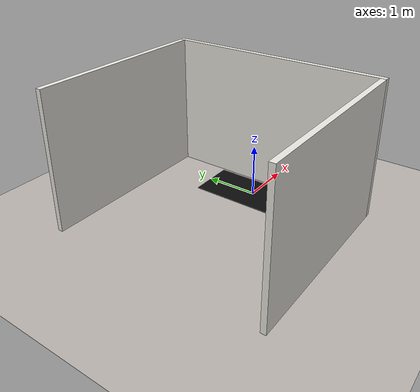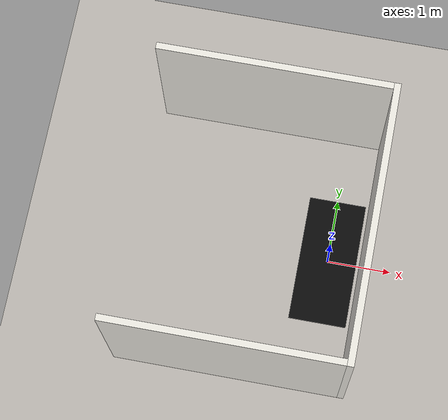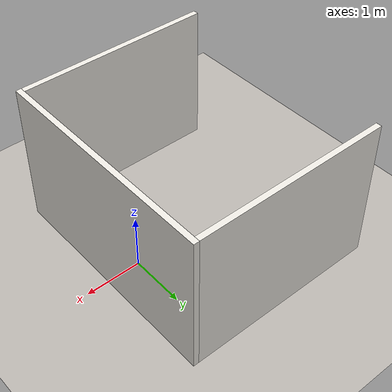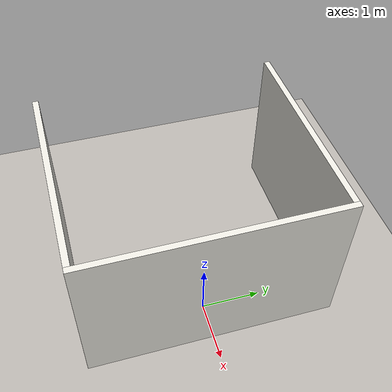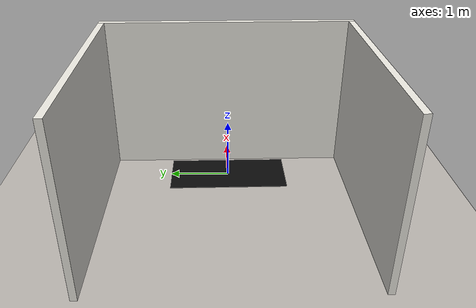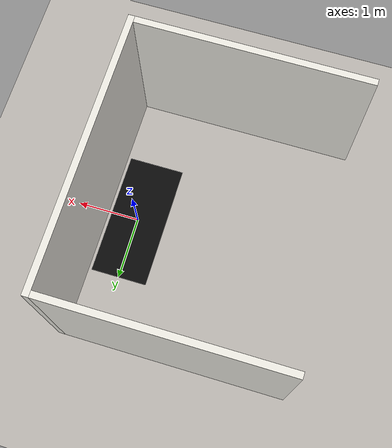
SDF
<sdf version="1.6">
 <world name="lab">
  <physics name="fast" type="dart">
   <max_step_size>0.005</max_step_size>
   <real_time_factor>1.0</real_time_factor>
   <dart><solver><solver_type>pgs</solver_type></solver><collision_detector>ode</collision_detector></dart>
  </physics>
  <plugin filename="gz-sim-physics-system" name="gz::sim::systems::Physics"/>
  <plugin filename="gz-sim-user-commands-system" name="gz::sim::systems::UserCommands"/>
  <plugin filename="gz-sim-scene-broadcaster-system" name="gz::sim::systems::SceneBroadcaster"/>
  <plugin filename="gz-sim-contact-system" name="gz::sim::systems::Contact"/>
  <plugin filename="gz-sim-sensors-system" name="gz::sim::systems::Sensors">
   <render_engine>ogre2</render_engine>
  </plugin>
  <light type="directional" name="sun">
   <cast_shadows>false</cast_shadows>
   <pose>0 0 10 0 0 0</pose>
   <diffuse>0.8 0.8 0.8 1</diffuse>
   <specular>0.2 0.2 0.2 1</specular>
   <attenuation>
    <range>1000</range>
    <constant>0.9</constant>
    <linear>0.01</linear>
    <quadratic>0.001</quadratic>
   </attenuation>
   <direction>-0.5 0.1 -0.9</direction>
  </light>
  <gravity>0 0 -9.8</gravity>
  <atmosphere type="adiabatic"/>
  <scene><ambient>0.4 0.4 0.4 1</ambient><background>0.7 0.8 1.0 1</background><grid>false</grid></scene>
  <model name="ground_plane">
   <static>true</static>
   <link name="link">
    <collision name="collision">
     <geometry><plane><normal>0 0 1</normal><size>8 8</size></plane></geometry>
     <surface><friction><ode><mu>50</mu></ode></friction></surface>
    </collision>
    <visual name="visual">
     <geometry><plane><normal>0 0 1</normal><size>8 8</size></plane></geometry>
     <material>
      <ambient>0.72 0.70 0.68 1</ambient>
      <diffuse>0.72 0.70 0.68 1</diffuse>
      <specular>0.05 0.05 0.05 1</specular>
     </material>
    </visual>
   </link>
  </model>
  <model name="floor_mat">
   <static>true</static>
   <pose>0 0 0.003 0 0 0</pose>
   <link name="link">
    <visual name="visual">
     <geometry><box><size>0.9 2.0 0.006</size></box></geometry>
     <material>
      <ambient>0.04 0.04 0.04 1</ambient>
      <diffuse>0.04 0.04 0.04 1</diffuse>
      <specular>0.0 0.0 0.0 1</specular>
     </material>
    </visual>
   </link>
  </model>
  <model name="room_shell">
   <static>true</static>
   <link name="link">
    <visual name="back_wall">
     <pose>0.55 0 1.3 0 0 0</pose>
     <geometry><box><size>0.1 4.2 2.6</size></box></geometry>
     <material>
      <ambient>0.92 0.91 0.88 1</ambient>
      <diffuse>0.92 0.91 0.88 1</diffuse>
      <specular>0.05 0.05 0.05 1</specular>
     </material>
    </visual>
    <visual name="left_wall">
     <pose>-1.25 2.05 1.3 0 0 0</pose>
     <geometry><box><size>3.5 0.1 2.6</size></box></geometry>
     <material>
      <ambient>0.92 0.91 0.88 1</ambient>
      <diffuse>0.92 0.91 0.88 1</diffuse>
      <specular>0.05 0.05 0.05 1</specular>
     </material>
    </visual>
    <visual name="right_wall">
     <pose>-1.25 -2.05 1.3 0 0 0</pose>
     <geometry><box><size>3.5 0.1 2.6</size></box></geometry>
     <material>
      <ambient>0.92 0.91 0.88 1</ambient>
      <diffuse>0.92 0.91 0.88 1</diffuse>
      <specular>0.05 0.05 0.05 1</specular>
     </material>
    </visual>
   </link>
  </model>
 </world>
</sdf>
